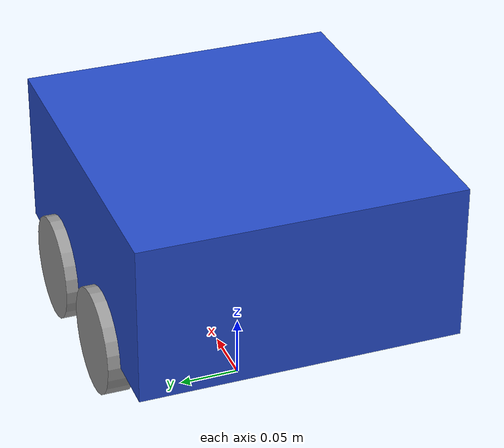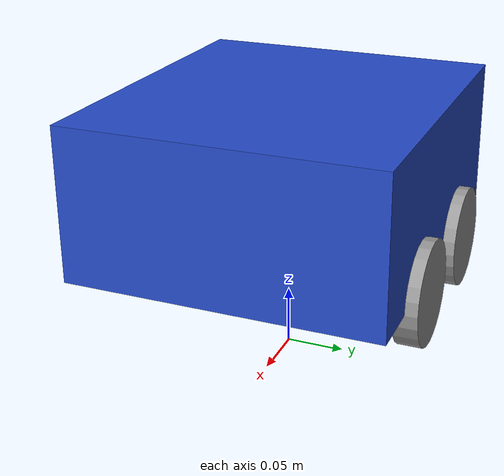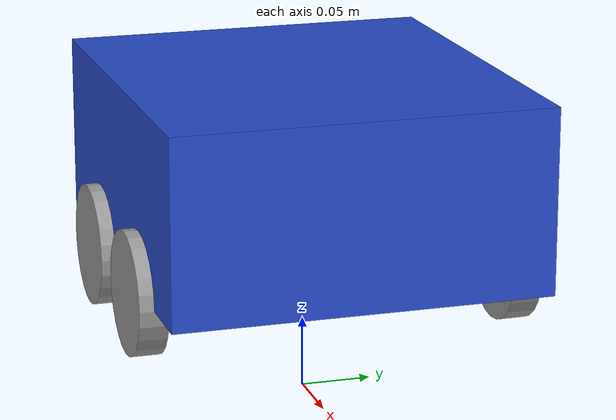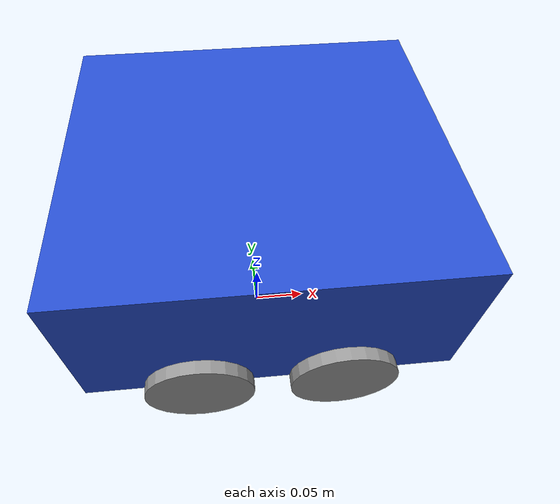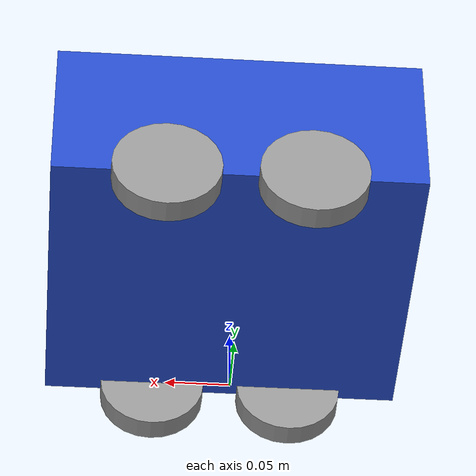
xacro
<?xml version="1.0"?>
<robot xmlns:xacro="http://www.ros.org/wiki/xacro">

    <xacro:property name="base_length" value="0.29" />
    <xacro:property name="base_width" value="0.26" />
    <xacro:property name="base_height" value="0.12825" />
    <xacro:property name="wheel_radius" value="0.0425" />
    <xacro:property name="wheel_length" value="0.02" />

    <link name = "base_footprint" />

    <link name = "base_link">
        <visual>
            <geometry>
                <box size = "${base_length} ${base_width} ${base_height}"></box>
            </geometry>
            <origin xyz = "0 0 ${base_height / 2.0}" rpy = "0 0 0"></origin>
            <material name = "blue"/>
        </visual>
        <collision>
            <geometry>
                <box size = "${base_length} ${base_width} ${base_height}"></box>
            </geometry>
            <origin xyz = "0 0 ${base_height / 2.0}" rpy = "0 0 0"></origin>
        </collision>
        <xacro:box_inertia m="5.0" l="${2.5*base_length}" w="${2.5*base_width}" h="${2.5*base_height}"
                           xyz="0 0 ${2.5*base_height / 2.0}" rpy="0 0 0" />
    </link>

    <xacro:macro name="wheel_link" params="prefix">
        <link name = "${prefix}_wheel_link">
            <visual>
                <geometry>
                    <cylinder radius = "${wheel_radius}" length = "${wheel_length}" />
                </geometry>
                <origin xyz = "0 0 0" rpy = "${pi / 2.0} 0 0" />
                <material name = "grey" />
            </visual>
            <collision>
                <geometry>
                    <cylinder radius = "${wheel_radius}" length = "${wheel_length}" />
                </geometry>
                <origin xyz = "0 0 0" rpy = "${pi / 2.0} 0 0" />
            </collision>
            <xacro:cylinder_inertia m ="1.0" r="${2.5*wheel_radius}" h="${2.5*wheel_length}" xyz=" 0 0 0"
                                    rpy="${pi / 2.0} 0 0" />
        </link>
    </xacro:macro>

    <xacro:wheel_link prefix="right"/>
    <xacro:wheel_link prefix="left"/>
    <xacro:wheel_link prefix="right_front"/>
    <xacro:wheel_link prefix="left_front"/>

    <joint name = "base_footprint_base_joint" type = "fixed">
        <parent link = "base_footprint" />
        <child link = "base_link" />
        <origin xyz = "0 0 0.1" rpy = "0 0 0" />
    </joint>

    <joint name = "base_right_wheel_joint" type = "continuous">
        <parent link = "base_link" />
        <child link = "right_wheel_link" />
        <origin xyz = "${-base_length / 2.0 + 0.0885} ${-(base_width / 2.0)} 0" rpy = "0 0 0" />
        <axis xyz = "0 1 0" />
    </joint>

    <joint name = "base_left_wheel_joint" type = "continuous">
        <parent link = "base_link" />
        <child link = "left_wheel_link" />
        <origin xyz = "${-base_length / 2.0 + 0.0885} ${(base_width / 2.0)} 0" rpy = "0 0 0" />
        <axis xyz = "0 1 0" />
    </joint>

    <joint name = "base_right_front_wheel_joint" type = "continuous">
        <parent link = "base_link" />
        <child link = "right_front_wheel_link" />
        <origin xyz = "${base_length / 2.0 - 0.0885} ${-(base_width / 2.0)} 0" rpy = "0 0 0" />
        <axis xyz = "0 1 0" />
    </joint>

    <joint name = "base_left_front_wheel_joint" type = "continuous">
        <parent link = "base_link" />
        <child link = "left_front_wheel_link" />
        <origin xyz = "${base_length / 2.0 - 0.0885} ${(base_width / 2.0)} 0" rpy = "0 0 0" />
        <axis xyz = "0 1 0" />
    </joint>

</robot>
